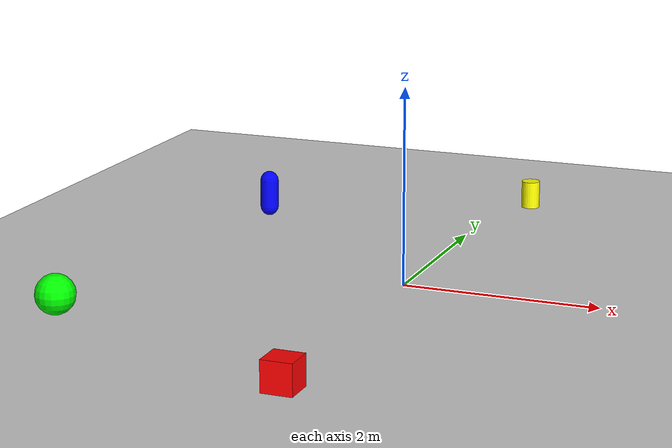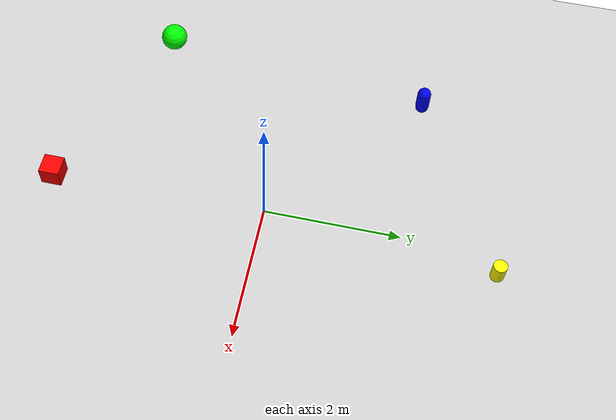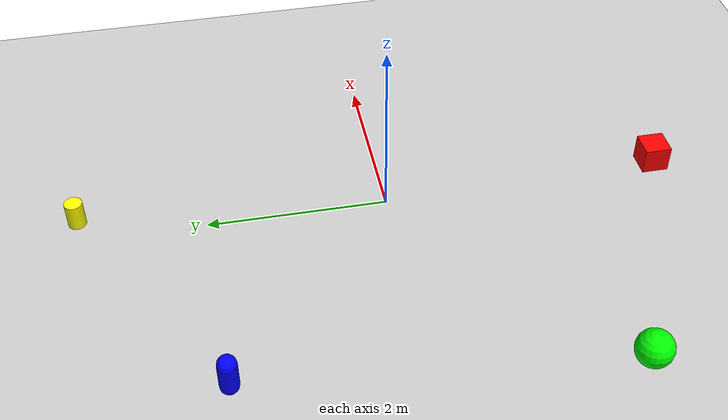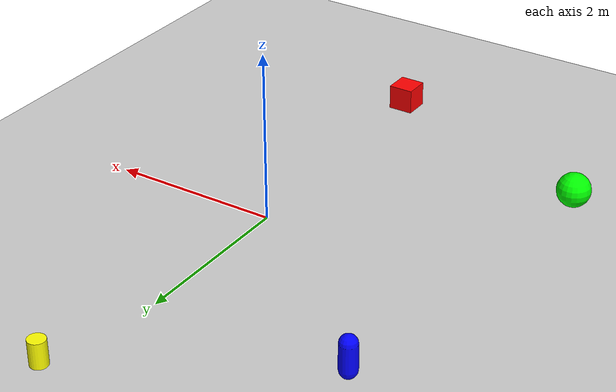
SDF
<?xml version='1.0' encoding='utf-8'?>
<sdf version="1.8">
  <world name="interview_world">
    <physics name="1ms" type="ignored">
      <max_step_size>0.001</max_step_size>
      <real_time_factor>1.0</real_time_factor>
    </physics>
    <plugin filename="gz-sim-physics-system" name="gz::sim::systems::Physics" />
    <plugin filename="gz-sim-user-commands-system" name="gz::sim::systems::UserCommands" />
    <plugin filename="gz-sim-scene-broadcaster-system" name="gz::sim::systems::SceneBroadcaster" />

    <light type="directional" name="sun">
      <cast_shadows>true</cast_shadows>
      <pose>0 0 10 0 0 0</pose>
      <diffuse>0.8 0.8 0.8 1</diffuse>
      <specular>0.2 0.2 0.2 1</specular>
      <direction>-0.5 0.1 -0.9</direction>
    </light>

    <model name="ground_plane">
      <static>true</static>
      <link name="link">
        <collision name="collision">
          <geometry><plane><normal>0 0 1</normal><size>100 100</size></plane></geometry>
        </collision>
        <visual name="visual">
          <geometry><plane><normal>0 0 1</normal><size>100 100</size></plane></geometry>
          <material>
            <ambient>0.8 0.8 0.8 1</ambient>
            <diffuse>0.8 0.8 0.8 1</diffuse>
          </material>
        </visual>
      </link>
    </model>

    <model name="target_box">
      <pose>0.065 -3.171 0.150 0 0 0</pose>
      <link name="link">
        <collision name="col"><geometry><box><size>0.3 0.3 0.3</size></box></geometry></collision>
        <visual name="vis">
          <geometry><box><size>0.3 0.3 0.3</size></box></geometry>
          <material>
            <ambient>1.0 0.0 0.0 1</ambient>
            <diffuse>1.0 0.0 0.0 1</diffuse>
            <specular>0.1 0.1 0.1 1</specular>
          </material>
        </visual>
      </link>
    </model>

    <model name="decoy_sphere">
      <pose>-2.741 -2.082 0.200 0 0 0</pose>
      <link name="link">
        <collision name="col"><geometry><sphere><radius>0.2</radius></sphere></geometry></collision>
        <visual name="vis">
          <geometry><sphere><radius>0.2</radius></sphere></geometry>
          <material>
            <ambient>0.0 1.0 0.0 1</ambient>
            <diffuse>0.0 1.0 0.0 1</diffuse>
          </material>
        </visual>
      </link>
    </model>

    <model name="decoy_capsule">
      <pose>-2.309 1.975 0.250 0 0 0</pose>
      <link name="link">
        <collision name="col"><geometry><capsule><radius>0.1</radius><length>0.30</length></capsule></geometry></collision>
        <visual name="vis">
          <geometry><capsule><radius>0.1</radius><length>0.30</length></capsule></geometry>
          <material>
            <ambient>0.0 0.0 1.0 1</ambient>
            <diffuse>0.0 0.0 1.0 1</diffuse>
          </material>
        </visual>
      </link>
    </model>

    <model name="decoy_cylinder">
      <pose>0.311 3.400 0.150 0 0 0</pose>
      <link name="link">
        <collision name="col"><geometry><cylinder><radius>0.1</radius><length>0.30</length></cylinder></geometry></collision>
        <visual name="vis">
          <geometry><cylinder><radius>0.1</radius><length>0.30</length></cylinder></geometry>
          <material>
            <ambient>1.0 1.0 0.0 1</ambient>
            <diffuse>1.0 1.0 0.0 1</diffuse>
          </material>
        </visual>
      </link>
    </model>

  </world>
</sdf>
